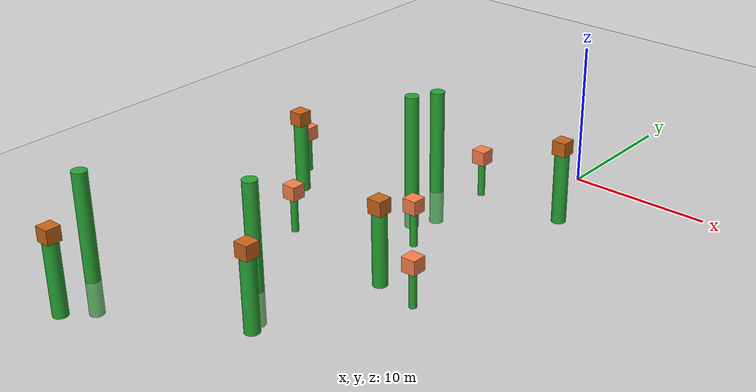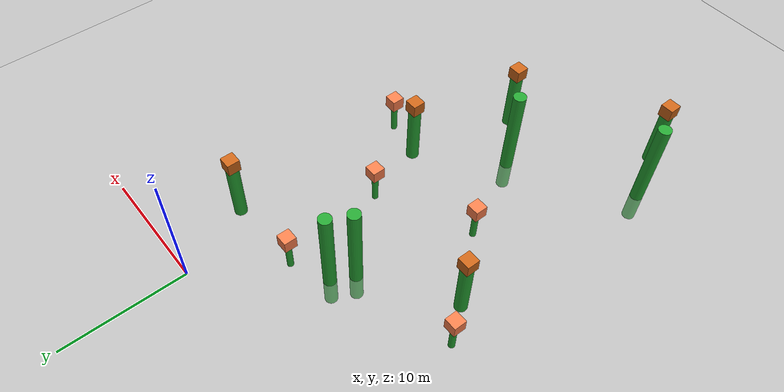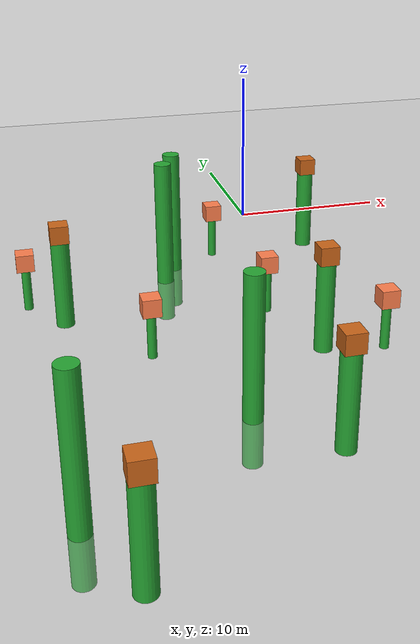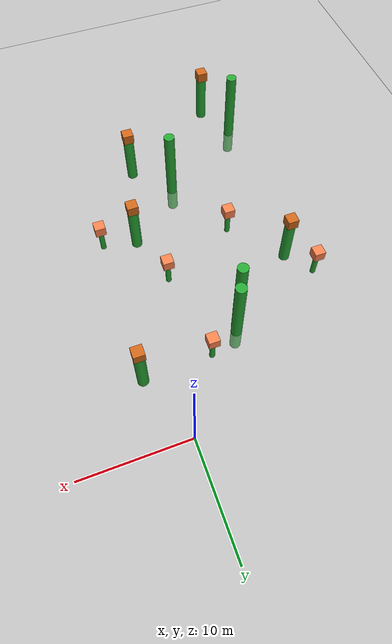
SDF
<sdf version="1.7">
 <world name="default">
  <model name="ground_plane">
   <static>1</static>
   <link name="link">
    <collision name="collision">
     <geometry><plane><normal>0 0 1</normal><size>100 100</size></plane></geometry>
     <surface>
      <contact><collide_bitmask>65535</collide_bitmask></contact>
      <friction><ode><mu>100</mu><mu2>50</mu2></ode></friction>
     </surface>
    </collision>
    <visual name="visual">
     <cast_shadows>0</cast_shadows>
     <geometry><plane><normal>0 0 1</normal><size>100 100</size></plane></geometry>
     <material>
      <script><uri>file://media/materials/scripts/gazebo.material</uri><name>Gazebo/Grey</name></script>
     </material>
    </visual>
   </link>
  </model>
  <model name="unit_cylinder_green_2_clone_clone_25">
   <link name="link">
    <inertial>
     <mass>1</mass>
     <inertia><ixx>0.145833</ixx><ixy>0</ixy><ixz>0</ixz><iyy>0.145833</iyy><iyz>0</iyz><izz>0.125</izz></inertia>
    </inertial>
    <visual name="visual">
     <geometry><cylinder><radius>0.5</radius><length>10</length></cylinder></geometry>
     <material>
      <script><name>Gazebo/Green</name><uri>file://media/materials/scripts/gazebo.material</uri></script>
      <shader type="pixel"><normal_map>__default__</normal_map></shader>
      <ambient>0 1 0.3 1</ambient>
      <diffuse>0.7 0.7 0.7 1</diffuse>
      <specular>0.01 0.01 0.01 1</specular>
      <emissive>0 0 0 1</emissive>
     </material>
    </visual>
    <collision name="collision">
     <geometry><cylinder><radius>0.5</radius><length>5</length></cylinder></geometry>
     <surface>
      <friction>
       <ode><mu>1</mu><mu2>1</mu2><fdir1>0 0 0</fdir1><slip1>0</slip1><slip2>0</slip2></ode>
       <torsional>
        <coefficient>1</coefficient>
        <patch_radius>0</patch_radius>
        <surface_radius>0</surface_radius>
        <use_patch_radius>1</use_patch_radius>
        <ode><slip>0</slip></ode>
       </torsional>
      </friction>
      <bounce><restitution_coefficient>0</restitution_coefficient><threshold>1e+06</threshold></bounce>
      <contact>
       <collide_without_contact>0</collide_without_contact>
       <collide_without_contact_bitmask>1</collide_without_contact_bitmask>
       <collide_bitmask>1</collide_bitmask>
       <ode>
        <soft_cfm>0</soft_cfm>
        <soft_erp>0.2</soft_erp>
        <kp>1e+13</kp>
        <kd>1</kd>
        <max_vel>0.01</max_vel>
        <min_depth>0</min_depth>
       </ode>
       <bullet>
        <split_impulse>1</split_impulse>
        <split_impulse_penetration_threshold>-0.01</split_impulse_penetration_threshold>
        <soft_cfm>0</soft_cfm>
        <soft_erp>0.2</soft_erp>
        <kp>1e+13</kp>
        <kd>1</kd>
       </bullet>
      </contact>
     </surface>
    </collision>
   </link>
   <static>1</static>
   <pose>-6.66472 -25.4538 2.5 0 0 -0.000967</pose>
  </model>
  <model name="unit_cylinder_green_2_clone_clone_27">
   <link name="link">
    <inertial>
     <mass>1</mass>
     <inertia><ixx>0.145833</ixx><ixy>0</ixy><ixz>0</ixz><iyy>0.145833</iyy><iyz>0</iyz><izz>0.125</izz></inertia>
    </inertial>
    <visual name="visual">
     <geometry><cylinder><radius>0.5</radius><length>10</length></cylinder></geometry>
     <material>
      <script><name>Gazebo/Green</name><uri>file://media/materials/scripts/gazebo.material</uri></script>
      <shader type="pixel"><normal_map>__default__</normal_map></shader>
      <ambient>0 1 0.3 1</ambient>
      <diffuse>0.7 0.7 0.7 1</diffuse>
      <specular>0.01 0.01 0.01 1</specular>
      <emissive>0 0 0 1</emissive>
     </material>
    </visual>
    <collision name="collision">
     <geometry><cylinder><radius>0.5</radius><length>5</length></cylinder></geometry>
     <surface>
      <friction>
       <ode><mu>1</mu><mu2>1</mu2><fdir1>0 0 0</fdir1><slip1>0</slip1><slip2>0</slip2></ode>
       <torsional>
        <coefficient>1</coefficient>
        <patch_radius>0</patch_radius>
        <surface_radius>0</surface_radius>
        <use_patch_radius>1</use_patch_radius>
        <ode><slip>0</slip></ode>
       </torsional>
      </friction>
      <bounce><restitution_coefficient>0</restitution_coefficient><threshold>1e+06</threshold></bounce>
      <contact>
       <collide_without_contact>0</collide_without_contact>
       <collide_without_contact_bitmask>1</collide_without_contact_bitmask>
       <collide_bitmask>1</collide_bitmask>
       <ode>
        <soft_cfm>0</soft_cfm>
        <soft_erp>0.2</soft_erp>
        <kp>1e+13</kp>
        <kd>1</kd>
        <max_vel>0.01</max_vel>
        <min_depth>0</min_depth>
       </ode>
       <bullet>
        <split_impulse>1</split_impulse>
        <split_impulse_penetration_threshold>-0.01</split_impulse_penetration_threshold>
        <soft_cfm>0</soft_cfm>
        <soft_erp>0.2</soft_erp>
        <kp>1e+13</kp>
        <kd>1</kd>
       </bullet>
      </contact>
     </surface>
    </collision>
   </link>
   <static>1</static>
   <pose>-15.2602 -31.188 2.5 0 0 -0.000967</pose>
  </model>
  <model name="unit_cylinder_green_2_clone_clone">
   <link name="link">
    <inertial>
     <mass>1</mass>
     <inertia><ixx>0.145833</ixx><ixy>0</ixy><ixz>0</ixz><iyy>0.145833</iyy><iyz>0</iyz><izz>0.125</izz></inertia>
    </inertial>
    <visual name="visual">
     <geometry><cylinder><radius>0.5</radius><length>10</length></cylinder></geometry>
     <material>
      <script><name>Gazebo/Green</name><uri>file://media/materials/scripts/gazebo.material</uri></script>
      <shader type="pixel"><normal_map>__default__</normal_map></shader>
      <ambient>0 1 0.3 1</ambient>
      <diffuse>0.7 0.7 0.7 1</diffuse>
      <specular>0.01 0.01 0.01 1</specular>
      <emissive>0 0 0 1</emissive>
     </material>
    </visual>
    <collision name="collision">
     <geometry><cylinder><radius>0.5</radius><length>5</length></cylinder></geometry>
     <surface>
      <friction>
       <ode><mu>1</mu><mu2>1</mu2><fdir1>0 0 0</fdir1><slip1>0</slip1><slip2>0</slip2></ode>
       <torsional>
        <coefficient>1</coefficient>
        <patch_radius>0</patch_radius>
        <surface_radius>0</surface_radius>
        <use_patch_radius>1</use_patch_radius>
        <ode><slip>0</slip></ode>
       </torsional>
      </friction>
      <bounce><restitution_coefficient>0</restitution_coefficient><threshold>1e+06</threshold></bounce>
      <contact>
       <collide_without_contact>0</collide_without_contact>
       <collide_without_contact_bitmask>1</collide_without_contact_bitmask>
       <collide_bitmask>1</collide_bitmask>
       <ode>
        <soft_cfm>0</soft_cfm>
        <soft_erp>0.2</soft_erp>
        <kp>1e+13</kp>
        <kd>1</kd>
        <max_vel>0.01</max_vel>
        <min_depth>0</min_depth>
       </ode>
       <bullet>
        <split_impulse>1</split_impulse>
        <split_impulse_penetration_threshold>-0.01</split_impulse_penetration_threshold>
        <soft_cfm>0</soft_cfm>
        <soft_erp>0.2</soft_erp>
        <kp>1e+13</kp>
        <kd>1</kd>
       </bullet>
      </contact>
     </surface>
    </collision>
   </link>
   <static>1</static>
   <pose>-7.63791 -9.5753 2.49999 0 0 -0.000946</pose>
  </model>
  <model name="unit_cylinder_green_2_clone_clone_clone">
   <link name="link">
    <inertial>
     <mass>1</mass>
     <inertia><ixx>0.145833</ixx><ixy>0</ixy><ixz>0</ixz><iyy>0.145833</iyy><iyz>0</iyz><izz>0.125</izz></inertia>
    </inertial>
    <visual name="visual">
     <geometry><cylinder><radius>0.5</radius><length>10</length></cylinder></geometry>
     <material>
      <script><name>Gazebo/Green</name><uri>file://media/materials/scripts/gazebo.material</uri></script>
      <shader type="pixel"><normal_map>__default__</normal_map></shader>
      <ambient>0 1 0.3 1</ambient>
      <diffuse>0.7 0.7 0.7 1</diffuse>
      <specular>0.01 0.01 0.01 1</specular>
      <emissive>0 0 0 1</emissive>
     </material>
    </visual>
    <collision name="collision">
     <geometry><cylinder><radius>0.5</radius><length>5</length></cylinder></geometry>
     <surface>
      <friction>
       <ode><mu>1</mu><mu2>1</mu2><fdir1>0 0 0</fdir1><slip1>0</slip1><slip2>0</slip2></ode>
       <torsional>
        <coefficient>1</coefficient>
        <patch_radius>0</patch_radius>
        <surface_radius>0</surface_radius>
        <use_patch_radius>1</use_patch_radius>
        <ode><slip>0</slip></ode>
       </torsional>
      </friction>
      <bounce><restitution_coefficient>0</restitution_coefficient><threshold>1e+06</threshold></bounce>
      <contact>
       <collide_without_contact>0</collide_without_contact>
       <collide_without_contact_bitmask>1</collide_without_contact_bitmask>
       <collide_bitmask>1</collide_bitmask>
       <ode>
        <soft_cfm>0</soft_cfm>
        <soft_erp>0.2</soft_erp>
        <kp>1e+13</kp>
        <kd>1</kd>
        <max_vel>0.01</max_vel>
        <min_depth>0</min_depth>
       </ode>
       <bullet>
        <split_impulse>1</split_impulse>
        <split_impulse_penetration_threshold>-0.01</split_impulse_penetration_threshold>
        <soft_cfm>0</soft_cfm>
        <soft_erp>0.2</soft_erp>
        <kp>1e+13</kp>
        <kd>1</kd>
       </bullet>
      </contact>
     </surface>
    </collision>
   </link>
   <static>1</static>
   <pose>-6.78608 -7.85921 2.49999 0 0 -0.000934</pose>
  </model>
  <model name="unit_cylinder_green_2_clone_clone_3_clone_0">
   <link name="link">
    <inertial>
     <mass>1</mass>
     <inertia><ixx>0.145833</ixx><ixy>0</ixy><ixz>0</ixz><iyy>0.145833</iyy><iyz>0</iyz><izz>0.125</izz></inertia>
    </inertial>
    <visual name="visual">
     <geometry><cylinder><radius>0.5</radius><length>5</length></cylinder></geometry>
     <material>
      <script><name>Gazebo/Green</name><uri>file://media/materials/scripts/gazebo.material</uri></script>
      <shader type="pixel"><normal_map>__default__</normal_map></shader>
      <ambient>0 1 0.3 1</ambient>
      <diffuse>0.7 0.7 0.7 1</diffuse>
      <specular>0.01 0.01 0.01 1</specular>
      <emissive>0 0 0 1</emissive>
     </material>
    </visual>
    <collision name="collision">
     <geometry><cylinder><radius>0.5</radius><length>5</length></cylinder></geometry>
     <surface>
      <friction>
       <ode><mu>1</mu><mu2>1</mu2><fdir1>0 0 0</fdir1><slip1>0</slip1><slip2>0</slip2></ode>
       <torsional>
        <coefficient>1</coefficient>
        <patch_radius>0</patch_radius>
        <surface_radius>0</surface_radius>
        <use_patch_radius>1</use_patch_radius>
        <ode><slip>0</slip></ode>
       </torsional>
      </friction>
      <bounce><restitution_coefficient>0</restitution_coefficient><threshold>1e+06</threshold></bounce>
      <contact>
       <collide_without_contact>0</collide_without_contact>
       <collide_without_contact_bitmask>1</collide_without_contact_bitmask>
       <collide_bitmask>1</collide_bitmask>
       <ode>
        <soft_cfm>0</soft_cfm>
        <soft_erp>0.2</soft_erp>
        <kp>1e+13</kp>
        <kd>1</kd>
        <max_vel>0.01</max_vel>
        <min_depth>0</min_depth>
       </ode>
       <bullet>
        <split_impulse>1</split_impulse>
        <split_impulse_penetration_threshold>-0.01</split_impulse_penetration_threshold>
        <soft_cfm>0</soft_cfm>
        <soft_erp>0.2</soft_erp>
        <kp>1e+13</kp>
        <kd>1</kd>
       </bullet>
      </contact>
     </surface>
    </collision>
   </link>
   <link name="link_3">
    <inertial>
     <mass>1</mass>
     <inertia>
      <ixx>0.166667</ixx>
      <ixy>0</ixy>
      <ixz>0</ixz>
      <iyy>0.166667</iyy>
      <iyz>0</iyz>
      <izz>0.166667</izz>
     </inertia>
    </inertial>
    <pose>0 0 3 0 -0 0.000935</pose>
    <visual name="visual">
     <geometry><box><size>1 1 1</size></box></geometry>
     <material>
      <lighting>1</lighting>
      <script><uri>file://media/materials/scripts/gazebo.material</uri><name>Gazebo/Grey</name></script>
      <shader type="pixel"><normal_map>__default__</normal_map></shader>
      <ambient>0.8 0.4 0.1 1</ambient>
      <diffuse>0.7 0.7 0.7 1</diffuse>
      <specular>0.01 0.01 0.01 1</specular>
      <emissive>0 0 0 1</emissive>
     </material>
    </visual>
    <collision name="collision">
     <geometry><box><size>1 1 1</size></box></geometry>
     <surface>
      <friction>
       <ode><mu>1</mu><mu2>1</mu2><fdir1>0 0 0</fdir1><slip1>0</slip1><slip2>0</slip2></ode>
       <torsional>
        <coefficient>1</coefficient>
        <patch_radius>0</patch_radius>
        <surface_radius>0</surface_radius>
        <use_patch_radius>1</use_patch_radius>
        <ode><slip>0</slip></ode>
       </torsional>
      </friction>
      <bounce><restitution_coefficient>0</restitution_coefficient><threshold>1e+06</threshold></bounce>
      <contact>
       <collide_without_contact>0</collide_without_contact>
       <collide_without_contact_bitmask>1</collide_without_contact_bitmask>
       <collide_bitmask>1</collide_bitmask>
       <ode>
        <soft_cfm>0</soft_cfm>
        <soft_erp>0.2</soft_erp>
        <kp>1e+13</kp>
        <kd>1</kd>
        <max_vel>0.01</max_vel>
        <min_depth>0</min_depth>
       </ode>
       <bullet>
        <split_impulse>1</split_impulse>
        <split_impulse_penetration_threshold>-0.01</split_impulse_penetration_threshold>
        <soft_cfm>0</soft_cfm>
        <soft_erp>0.2</soft_erp>
        <kp>1e+13</kp>
        <kd>1</kd>
       </bullet>
      </contact>
     </surface>
    </collision>
   </link>
   <static>1</static>
   <pose>2.45235 -6.17976 2.49999 0 0 -0.000935</pose>
  </model>
  <model name="unit_cylinder_green_2_clone_clone_3_clone_0_clone_0_clone_6">
   <link name="link">
    <inertial>
     <mass>1</mass>
     <inertia><ixx>0.145833</ixx><ixy>0</ixy><ixz>0</ixz><iyy>0.145833</iyy><iyz>0</iyz><izz>0.125</izz></inertia>
    </inertial>
    <visual name="visual">
     <geometry><cylinder><radius>0.5</radius><length>5</length></cylinder></geometry>
     <material>
      <script><name>Gazebo/Green</name><uri>file://media/materials/scripts/gazebo.material</uri></script>
      <shader type="pixel"><normal_map>__default__</normal_map></shader>
      <ambient>0 1 0.3 1</ambient>
      <diffuse>0.7 0.7 0.7 1</diffuse>
      <specular>0.01 0.01 0.01 1</specular>
      <emissive>0 0 0 1</emissive>
     </material>
    </visual>
    <collision name="collision">
     <geometry><cylinder><radius>0.5</radius><length>5</length></cylinder></geometry>
     <surface>
      <friction>
       <ode><mu>1</mu><mu2>1</mu2><fdir1>0 0 0</fdir1><slip1>0</slip1><slip2>0</slip2></ode>
       <torsional>
        <coefficient>1</coefficient>
        <patch_radius>0</patch_radius>
        <surface_radius>0</surface_radius>
        <use_patch_radius>1</use_patch_radius>
        <ode><slip>0</slip></ode>
       </torsional>
      </friction>
      <bounce><restitution_coefficient>0</restitution_coefficient><threshold>1e+06</threshold></bounce>
      <contact>
       <collide_without_contact>0</collide_without_contact>
       <collide_without_contact_bitmask>1</collide_without_contact_bitmask>
       <collide_bitmask>1</collide_bitmask>
       <ode>
        <soft_cfm>0</soft_cfm>
        <soft_erp>0.2</soft_erp>
        <kp>1e+13</kp>
        <kd>1</kd>
        <max_vel>0.01</max_vel>
        <min_depth>0</min_depth>
       </ode>
       <bullet>
        <split_impulse>1</split_impulse>
        <split_impulse_penetration_threshold>-0.01</split_impulse_penetration_threshold>
        <soft_cfm>0</soft_cfm>
        <soft_erp>0.2</soft_erp>
        <kp>1e+13</kp>
        <kd>1</kd>
       </bullet>
      </contact>
     </surface>
    </collision>
   </link>
   <link name="link_3">
    <inertial>
     <mass>1</mass>
     <inertia>
      <ixx>0.166667</ixx>
      <ixy>0</ixy>
      <ixz>0</ixz>
      <iyy>0.166667</iyy>
      <iyz>0</iyz>
      <izz>0.166667</izz>
     </inertia>
    </inertial>
    <pose>0 0 3 0 -0 0.000935</pose>
    <visual name="visual">
     <geometry><box><size>1 1 1</size></box></geometry>
     <material>
      <lighting>1</lighting>
      <script><uri>file://media/materials/scripts/gazebo.material</uri><name>Gazebo/Grey</name></script>
      <shader type="pixel"><normal_map>__default__</normal_map></shader>
      <ambient>0.8 0.4 0.1 1</ambient>
      <diffuse>0.7 0.7 0.7 1</diffuse>
      <specular>0.01 0.01 0.01 1</specular>
      <emissive>0 0 0 1</emissive>
     </material>
    </visual>
    <collision name="collision">
     <geometry><box><size>1 1 1</size></box></geometry>
     <surface>
      <friction>
       <ode><mu>1</mu><mu2>1</mu2><fdir1>0 0 0</fdir1><slip1>0</slip1><slip2>0</slip2></ode>
       <torsional>
        <coefficient>1</coefficient>
        <patch_radius>0</patch_radius>
        <surface_radius>0</surface_radius>
        <use_patch_radius>1</use_patch_radius>
        <ode><slip>0</slip></ode>
       </torsional>
      </friction>
      <bounce><restitution_coefficient>0</restitution_coefficient><threshold>1e+06</threshold></bounce>
      <contact>
       <collide_without_contact>0</collide_without_contact>
       <collide_without_contact_bitmask>1</collide_without_contact_bitmask>
       <collide_bitmask>1</collide_bitmask>
       <ode>
        <soft_cfm>0</soft_cfm>
        <soft_erp>0.2</soft_erp>
        <kp>1e+13</kp>
        <kd>1</kd>
        <max_vel>0.01</max_vel>
        <min_depth>0</min_depth>
       </ode>
       <bullet>
        <split_impulse>1</split_impulse>
        <split_impulse_penetration_threshold>-0.01</split_impulse_penetration_threshold>
        <soft_cfm>0</soft_cfm>
        <soft_erp>0.2</soft_erp>
        <kp>1e+13</kp>
        <kd>1</kd>
       </bullet>
      </contact>
     </surface>
    </collision>
   </link>
   <static>1</static>
   <pose>-3.41167 -28.8364 2.49999 0 0 -0.000935</pose>
  </model>
  <model name="unit_cylinder_green_2_clone_clone_3_clone_0_clone_0_clone_12">
   <link name="link">
    <inertial>
     <mass>1</mass>
     <inertia><ixx>0.145833</ixx><ixy>0</ixy><ixz>0</ixz><iyy>0.145833</iyy><iyz>0</iyz><izz>0.125</izz></inertia>
    </inertial>
    <visual name="visual">
     <geometry><cylinder><radius>0.5</radius><length>5</length></cylinder></geometry>
     <material>
      <script><name>Gazebo/Green</name><uri>file://media/materials/scripts/gazebo.material</uri></script>
      <shader type="pixel"><normal_map>__default__</normal_map></shader>
      <ambient>0 1 0.3 1</ambient>
      <diffuse>0.7 0.7 0.7 1</diffuse>
      <specular>0.01 0.01 0.01 1</specular>
      <emissive>0 0 0 1</emissive>
     </material>
    </visual>
    <collision name="collision">
     <geometry><cylinder><radius>0.5</radius><length>5</length></cylinder></geometry>
     <surface>
      <friction>
       <ode><mu>1</mu><mu2>1</mu2><fdir1>0 0 0</fdir1><slip1>0</slip1><slip2>0</slip2></ode>
       <torsional>
        <coefficient>1</coefficient>
        <patch_radius>0</patch_radius>
        <surface_radius>0</surface_radius>
        <use_patch_radius>1</use_patch_radius>
        <ode><slip>0</slip></ode>
       </torsional>
      </friction>
      <bounce><restitution_coefficient>0</restitution_coefficient><threshold>1e+06</threshold></bounce>
      <contact>
       <collide_without_contact>0</collide_without_contact>
       <collide_without_contact_bitmask>1</collide_without_contact_bitmask>
       <collide_bitmask>1</collide_bitmask>
       <ode>
        <soft_cfm>0</soft_cfm>
        <soft_erp>0.2</soft_erp>
        <kp>1e+13</kp>
        <kd>1</kd>
        <max_vel>0.01</max_vel>
        <min_depth>0</min_depth>
       </ode>
       <bullet>
        <split_impulse>1</split_impulse>
        <split_impulse_penetration_threshold>-0.01</split_impulse_penetration_threshold>
        <soft_cfm>0</soft_cfm>
        <soft_erp>0.2</soft_erp>
        <kp>1e+13</kp>
        <kd>1</kd>
       </bullet>
      </contact>
     </surface>
    </collision>
   </link>
   <link name="link_3">
    <inertial>
     <mass>1</mass>
     <inertia>
      <ixx>0.166667</ixx>
      <ixy>0</ixy>
      <ixz>0</ixz>
      <iyy>0.166667</iyy>
      <iyz>0</iyz>
      <izz>0.166667</izz>
     </inertia>
    </inertial>
    <pose>0 0 3 0 -0 0.000935</pose>
    <visual name="visual">
     <geometry><box><size>1 1 1</size></box></geometry>
     <material>
      <lighting>1</lighting>
      <script><uri>file://media/materials/scripts/gazebo.material</uri><name>Gazebo/Grey</name></script>
      <shader type="pixel"><normal_map>__default__</normal_map></shader>
      <ambient>0.8 0.4 0.1 1</ambient>
      <diffuse>0.7 0.7 0.7 1</diffuse>
      <specular>0.01 0.01 0.01 1</specular>
      <emissive>0 0 0 1</emissive>
     </material>
    </visual>
    <collision name="collision">
     <geometry><box><size>1 1 1</size></box></geometry>
     <surface>
      <friction>
       <ode><mu>1</mu><mu2>1</mu2><fdir1>0 0 0</fdir1><slip1>0</slip1><slip2>0</slip2></ode>
       <torsional>
        <coefficient>1</coefficient>
        <patch_radius>0</patch_radius>
        <surface_radius>0</surface_radius>
        <use_patch_radius>1</use_patch_radius>
        <ode><slip>0</slip></ode>
       </torsional>
      </friction>
      <bounce><restitution_coefficient>0</restitution_coefficient><threshold>1e+06</threshold></bounce>
      <contact>
       <collide_without_contact>0</collide_without_contact>
       <collide_without_contact_bitmask>1</collide_without_contact_bitmask>
       <collide_bitmask>1</collide_bitmask>
       <ode>
        <soft_cfm>0</soft_cfm>
        <soft_erp>0.2</soft_erp>
        <kp>1e+13</kp>
        <kd>1</kd>
        <max_vel>0.01</max_vel>
        <min_depth>0</min_depth>
       </ode>
       <bullet>
        <split_impulse>1</split_impulse>
        <split_impulse_penetration_threshold>-0.01</split_impulse_penetration_threshold>
        <soft_cfm>0</soft_cfm>
        <soft_erp>0.2</soft_erp>
        <kp>1e+13</kp>
        <kd>1</kd>
       </bullet>
      </contact>
     </surface>
    </collision>
   </link>
   <static>1</static>
   <pose>-1.25623 -20.1511 2.49999 0 0 -0.000935</pose>
  </model>
  <model name="unit_cylinder_green_2_clone_clone_3_clone_0_clone_0_clone_21">
   <link name="link">
    <inertial>
     <mass>1</mass>
     <inertia><ixx>0.145833</ixx><ixy>0</ixy><ixz>0</ixz><iyy>0.145833</iyy><iyz>0</iyz><izz>0.125</izz></inertia>
    </inertial>
    <visual name="visual">
     <geometry><cylinder><radius>0.5</radius><length>5</length></cylinder></geometry>
     <material>
      <script><name>Gazebo/Green</name><uri>file://media/materials/scripts/gazebo.material</uri></script>
      <shader type="pixel"><normal_map>__default__</normal_map></shader>
      <ambient>0 1 0.3 1</ambient>
      <diffuse>0.7 0.7 0.7 1</diffuse>
      <specular>0.01 0.01 0.01 1</specular>
      <emissive>0 0 0 1</emissive>
     </material>
    </visual>
    <collision name="collision">
     <geometry><cylinder><radius>0.5</radius><length>5</length></cylinder></geometry>
     <surface>
      <friction>
       <ode><mu>1</mu><mu2>1</mu2><fdir1>0 0 0</fdir1><slip1>0</slip1><slip2>0</slip2></ode>
       <torsional>
        <coefficient>1</coefficient>
        <patch_radius>0</patch_radius>
        <surface_radius>0</surface_radius>
        <use_patch_radius>1</use_patch_radius>
        <ode><slip>0</slip></ode>
       </torsional>
      </friction>
      <bounce><restitution_coefficient>0</restitution_coefficient><threshold>1e+06</threshold></bounce>
      <contact>
       <collide_without_contact>0</collide_without_contact>
       <collide_without_contact_bitmask>1</collide_without_contact_bitmask>
       <collide_bitmask>1</collide_bitmask>
       <ode>
        <soft_cfm>0</soft_cfm>
        <soft_erp>0.2</soft_erp>
        <kp>1e+13</kp>
        <kd>1</kd>
        <max_vel>0.01</max_vel>
        <min_depth>0</min_depth>
       </ode>
       <bullet>
        <split_impulse>1</split_impulse>
        <split_impulse_penetration_threshold>-0.01</split_impulse_penetration_threshold>
        <soft_cfm>0</soft_cfm>
        <soft_erp>0.2</soft_erp>
        <kp>1e+13</kp>
        <kd>1</kd>
       </bullet>
      </contact>
     </surface>
    </collision>
   </link>
   <link name="link_3">
    <inertial>
     <mass>1</mass>
     <inertia>
      <ixx>0.166667</ixx>
      <ixy>0</ixy>
      <ixz>0</ixz>
      <iyy>0.166667</iyy>
      <iyz>0</iyz>
      <izz>0.166667</izz>
     </inertia>
    </inertial>
    <pose>0 0 3 0 -0 0.000935</pose>
    <visual name="visual">
     <geometry><box><size>1 1 1</size></box></geometry>
     <material>
      <lighting>1</lighting>
      <script><uri>file://media/materials/scripts/gazebo.material</uri><name>Gazebo/Grey</name></script>
      <shader type="pixel"><normal_map>__default__</normal_map></shader>
      <ambient>0.8 0.4 0.1 1</ambient>
      <diffuse>0.7 0.7 0.7 1</diffuse>
      <specular>0.01 0.01 0.01 1</specular>
      <emissive>0 0 0 1</emissive>
     </material>
    </visual>
    <collision name="collision">
     <geometry><box><size>1 1 1</size></box></geometry>
     <surface>
      <friction>
       <ode><mu>1</mu><mu2>1</mu2><fdir1>0 0 0</fdir1><slip1>0</slip1><slip2>0</slip2></ode>
       <torsional>
        <coefficient>1</coefficient>
        <patch_radius>0</patch_radius>
        <surface_radius>0</surface_radius>
        <use_patch_radius>1</use_patch_radius>
        <ode><slip>0</slip></ode>
       </torsional>
      </friction>
      <bounce><restitution_coefficient>0</restitution_coefficient><threshold>1e+06</threshold></bounce>
      <contact>
       <collide_without_contact>0</collide_without_contact>
       <collide_without_contact_bitmask>1</collide_without_contact_bitmask>
       <collide_bitmask>1</collide_bitmask>
       <ode>
        <soft_cfm>0</soft_cfm>
        <soft_erp>0.2</soft_erp>
        <kp>1e+13</kp>
        <kd>1</kd>
        <max_vel>0.01</max_vel>
        <min_depth>0</min_depth>
       </ode>
       <bullet>
        <split_impulse>1</split_impulse>
        <split_impulse_penetration_threshold>-0.01</split_impulse_penetration_threshold>
        <soft_cfm>0</soft_cfm>
        <soft_erp>0.2</soft_erp>
        <kp>1e+13</kp>
        <kd>1</kd>
       </bullet>
      </contact>
     </surface>
    </collision>
   </link>
   <static>1</static>
   <pose>-14.145 -13.8287 2.49999 0 0 -0.000935</pose>
  </model>
  <model name="unit_cylinder_green_2_clone_clone_3_clone_0_clone_0_clone_28">
   <link name="link">
    <inertial>
     <mass>1</mass>
     <inertia><ixx>0.145833</ixx><ixy>0</ixy><ixz>0</ixz><iyy>0.145833</iyy><iyz>0</iyz><izz>0.125</izz></inertia>
    </inertial>
    <visual name="visual">
     <geometry><cylinder><radius>0.5</radius><length>5</length></cylinder></geometry>
     <material>
      <script><name>Gazebo/Green</name><uri>file://media/materials/scripts/gazebo.material</uri></script>
      <shader type="pixel"><normal_map>__default__</normal_map></shader>
      <ambient>0 1 0.3 1</ambient>
      <diffuse>0.7 0.7 0.7 1</diffuse>
      <specular>0.01 0.01 0.01 1</specular>
      <emissive>0 0 0 1</emissive>
     </material>
    </visual>
    <collision name="collision">
     <geometry><cylinder><radius>0.5</radius><length>5</length></cylinder></geometry>
     <surface>
      <friction>
       <ode><mu>1</mu><mu2>1</mu2><fdir1>0 0 0</fdir1><slip1>0</slip1><slip2>0</slip2></ode>
       <torsional>
        <coefficient>1</coefficient>
        <patch_radius>0</patch_radius>
        <surface_radius>0</surface_radius>
        <use_patch_radius>1</use_patch_radius>
        <ode><slip>0</slip></ode>
       </torsional>
      </friction>
      <bounce><restitution_coefficient>0</restitution_coefficient><threshold>1e+06</threshold></bounce>
      <contact>
       <collide_without_contact>0</collide_without_contact>
       <collide_without_contact_bitmask>1</collide_without_contact_bitmask>
       <collide_bitmask>1</collide_bitmask>
       <ode>
        <soft_cfm>0</soft_cfm>
        <soft_erp>0.2</soft_erp>
        <kp>1e+13</kp>
        <kd>1</kd>
        <max_vel>0.01</max_vel>
        <min_depth>0</min_depth>
       </ode>
       <bullet>
        <split_impulse>1</split_impulse>
        <split_impulse_penetration_threshold>-0.01</split_impulse_penetration_threshold>
        <soft_cfm>0</soft_cfm>
        <soft_erp>0.2</soft_erp>
        <kp>1e+13</kp>
        <kd>1</kd>
       </bullet>
      </contact>
     </surface>
    </collision>
   </link>
   <link name="link_3">
    <inertial>
     <mass>1</mass>
     <inertia>
      <ixx>0.166667</ixx>
      <ixy>0</ixy>
      <ixz>0</ixz>
      <iyy>0.166667</iyy>
      <iyz>0</iyz>
      <izz>0.166667</izz>
     </inertia>
    </inertial>
    <pose>0 0 3 0 -0 0.000935</pose>
    <visual name="visual">
     <geometry><box><size>1 1 1</size></box></geometry>
     <material>
      <lighting>1</lighting>
      <script><uri>file://media/materials/scripts/gazebo.material</uri><name>Gazebo/Grey</name></script>
      <shader type="pixel"><normal_map>__default__</normal_map></shader>
      <ambient>0.8 0.4 0.1 1</ambient>
      <diffuse>0.7 0.7 0.7 1</diffuse>
      <specular>0.01 0.01 0.01 1</specular>
      <emissive>0 0 0 1</emissive>
     </material>
    </visual>
    <collision name="collision">
     <geometry><box><size>1 1 1</size></box></geometry>
     <surface>
      <friction>
       <ode><mu>1</mu><mu2>1</mu2><fdir1>0 0 0</fdir1><slip1>0</slip1><slip2>0</slip2></ode>
       <torsional>
        <coefficient>1</coefficient>
        <patch_radius>0</patch_radius>
        <surface_radius>0</surface_radius>
        <use_patch_radius>1</use_patch_radius>
        <ode><slip>0</slip></ode>
       </torsional>
      </friction>
      <bounce><restitution_coefficient>0</restitution_coefficient><threshold>1e+06</threshold></bounce>
      <contact>
       <collide_without_contact>0</collide_without_contact>
       <collide_without_contact_bitmask>1</collide_without_contact_bitmask>
       <collide_bitmask>1</collide_bitmask>
       <ode>
        <soft_cfm>0</soft_cfm>
        <soft_erp>0.2</soft_erp>
        <kp>1e+13</kp>
        <kd>1</kd>
        <max_vel>0.01</max_vel>
        <min_depth>0</min_depth>
       </ode>
       <bullet>
        <split_impulse>1</split_impulse>
        <split_impulse_penetration_threshold>-0.01</split_impulse_penetration_threshold>
        <soft_cfm>0</soft_cfm>
        <soft_erp>0.2</soft_erp>
        <kp>1e+13</kp>
        <kd>1</kd>
       </bullet>
      </contact>
     </surface>
    </collision>
   </link>
   <static>1</static>
   <pose>-13.3463 -34.9149 2.49999 0 0 -0.000935</pose>
  </model>
  <model name="unit_cylinder_green_2_clone_clone_3_clone_0_clone_0_clone_52">
   <link name="link">
    <inertial>
     <mass>1</mass>
     <inertia><ixx>0.145833</ixx><ixy>0</ixy><ixz>0</ixz><iyy>0.145833</iyy><iyz>0</iyz><izz>0.125</izz></inertia>
    </inertial>
    <pose>0 0 -1.25 0 -0 0</pose>
    <visual name="visual">
     <geometry><cylinder><radius>0.25</radius><length>2.5</length></cylinder></geometry>
     <material>
      <script><name>Gazebo/Green</name><uri>file://media/materials/scripts/gazebo.material</uri></script>
      <shader type="pixel"><normal_map>__default__</normal_map></shader>
      <ambient>0 1 0.3 1</ambient>
      <diffuse>0.7 0.7 0.7 1</diffuse>
      <specular>0.01 0.01 0.01 1</specular>
      <emissive>0 0 0 1</emissive>
     </material>
    </visual>
    <collision name="collision">
     <geometry><cylinder><radius>0.5</radius><length>5</length></cylinder></geometry>
     <surface>
      <friction>
       <ode><mu>1</mu><mu2>1</mu2><fdir1>0 0 0</fdir1><slip1>0</slip1><slip2>0</slip2></ode>
       <torsional>
        <coefficient>1</coefficient>
        <patch_radius>0</patch_radius>
        <surface_radius>0</surface_radius>
        <use_patch_radius>1</use_patch_radius>
        <ode><slip>0</slip></ode>
       </torsional>
      </friction>
      <bounce><restitution_coefficient>0</restitution_coefficient><threshold>1e+06</threshold></bounce>
      <contact>
       <collide_without_contact>0</collide_without_contact>
       <collide_without_contact_bitmask>1</collide_without_contact_bitmask>
       <collide_bitmask>1</collide_bitmask>
       <ode>
        <soft_cfm>0</soft_cfm>
        <soft_erp>0.2</soft_erp>
        <kp>1e+13</kp>
        <kd>1</kd>
        <max_vel>0.01</max_vel>
        <min_depth>0</min_depth>
       </ode>
       <bullet>
        <split_impulse>1</split_impulse>
        <split_impulse_penetration_threshold>-0.01</split_impulse_penetration_threshold>
        <soft_cfm>0</soft_cfm>
        <soft_erp>0.2</soft_erp>
        <kp>1e+13</kp>
        <kd>1</kd>
       </bullet>
      </contact>
     </surface>
    </collision>
   </link>
   <link name="link_3">
    <inertial>
     <mass>1</mass>
     <inertia>
      <ixx>0.166667</ixx>
      <ixy>0</ixy>
      <ixz>0</ixz>
      <iyy>0.166667</iyy>
      <iyz>0</iyz>
      <izz>0.166667</izz>
     </inertia>
    </inertial>
    <pose>0 0 0.5 0 -0 0.000935</pose>
    <visual name="visual">
     <geometry><box><size>1 1 1</size></box></geometry>
     <material>
      <lighting>1</lighting>
      <script><uri>file://media/materials/scripts/gazebo.material</uri><name>Gazebo/Grey</name></script>
      <shader type="pixel"><normal_map>__default__</normal_map></shader>
      <ambient>1 0.5 0.3 1</ambient>
      <diffuse>0.7 0.7 0.7 1</diffuse>
      <specular>0.01 0.01 0.01 1</specular>
      <emissive>0 0 0 1</emissive>
     </material>
    </visual>
    <collision name="collision">
     <geometry><box><size>1 1 1</size></box></geometry>
     <surface>
      <friction>
       <ode><mu>1</mu><mu2>1</mu2><fdir1>0 0 0</fdir1><slip1>0</slip1><slip2>0</slip2></ode>
       <torsional>
        <coefficient>1</coefficient>
        <patch_radius>0</patch_radius>
        <surface_radius>0</surface_radius>
        <use_patch_radius>1</use_patch_radius>
        <ode><slip>0</slip></ode>
       </torsional>
      </friction>
      <bounce><restitution_coefficient>0</restitution_coefficient><threshold>1e+06</threshold></bounce>
      <contact>
       <collide_without_contact>0</collide_without_contact>
       <collide_without_contact_bitmask>1</collide_without_contact_bitmask>
       <collide_bitmask>1</collide_bitmask>
       <ode>
        <soft_cfm>0</soft_cfm>
        <soft_erp>0.2</soft_erp>
        <kp>1e+13</kp>
        <kd>1</kd>
        <max_vel>0.01</max_vel>
        <min_depth>0</min_depth>
       </ode>
       <bullet>
        <split_impulse>1</split_impulse>
        <split_impulse_penetration_threshold>-0.01</split_impulse_penetration_threshold>
        <soft_cfm>0</soft_cfm>
        <soft_erp>0.2</soft_erp>
        <kp>1e+13</kp>
        <kd>1</kd>
       </bullet>
      </contact>
     </surface>
    </collision>
   </link>
   <static>1</static>
   <pose>-16.0056 -11.3245 2.49999 0 0 -0.000935</pose>
  </model>
  <model name="unit_cylinder_green_2_clone_clone_3_clone_0_clone_0_clone_55">
   <link name="link">
    <inertial>
     <mass>1</mass>
     <inertia><ixx>0.145833</ixx><ixy>0</ixy><ixz>0</ixz><iyy>0.145833</iyy><iyz>0</iyz><izz>0.125</izz></inertia>
    </inertial>
    <pose>0 0 -1.25 0 -0 0</pose>
    <visual name="visual">
     <geometry><cylinder><radius>0.25</radius><length>2.5</length></cylinder></geometry>
     <material>
      <script><name>Gazebo/Green</name><uri>file://media/materials/scripts/gazebo.material</uri></script>
      <shader type="pixel"><normal_map>__default__</normal_map></shader>
      <ambient>0 1 0.3 1</ambient>
      <diffuse>0.7 0.7 0.7 1</diffuse>
      <specular>0.01 0.01 0.01 1</specular>
      <emissive>0 0 0 1</emissive>
     </material>
    </visual>
    <collision name="collision">
     <geometry><cylinder><radius>0.5</radius><length>5</length></cylinder></geometry>
     <surface>
      <friction>
       <ode><mu>1</mu><mu2>1</mu2><fdir1>0 0 0</fdir1><slip1>0</slip1><slip2>0</slip2></ode>
       <torsional>
        <coefficient>1</coefficient>
        <patch_radius>0</patch_radius>
        <surface_radius>0</surface_radius>
        <use_patch_radius>1</use_patch_radius>
        <ode><slip>0</slip></ode>
       </torsional>
      </friction>
      <bounce><restitution_coefficient>0</restitution_coefficient><threshold>1e+06</threshold></bounce>
      <contact>
       <collide_without_contact>0</collide_without_contact>
       <collide_without_contact_bitmask>1</collide_without_contact_bitmask>
       <collide_bitmask>1</collide_bitmask>
       <ode>
        <soft_cfm>0</soft_cfm>
        <soft_erp>0.2</soft_erp>
        <kp>1e+13</kp>
        <kd>1</kd>
        <max_vel>0.01</max_vel>
        <min_depth>0</min_depth>
       </ode>
       <bullet>
        <split_impulse>1</split_impulse>
        <split_impulse_penetration_threshold>-0.01</split_impulse_penetration_threshold>
        <soft_cfm>0</soft_cfm>
        <soft_erp>0.2</soft_erp>
        <kp>1e+13</kp>
        <kd>1</kd>
       </bullet>
      </contact>
     </surface>
    </collision>
   </link>
   <link name="link_3">
    <inertial>
     <mass>1</mass>
     <inertia>
      <ixx>0.166667</ixx>
      <ixy>0</ixy>
      <ixz>0</ixz>
      <iyy>0.166667</iyy>
      <iyz>0</iyz>
      <izz>0.166667</izz>
     </inertia>
    </inertial>
    <pose>0 0 0.5 0 -0 0.000935</pose>
    <visual name="visual">
     <geometry><box><size>1 1 1</size></box></geometry>
     <material>
      <lighting>1</lighting>
      <script><uri>file://media/materials/scripts/gazebo.material</uri><name>Gazebo/Grey</name></script>
      <shader type="pixel"><normal_map>__default__</normal_map></shader>
      <ambient>1 0.5 0.3 1</ambient>
      <diffuse>0.7 0.7 0.7 1</diffuse>
      <specular>0.01 0.01 0.01 1</specular>
      <emissive>0 0 0 1</emissive>
     </material>
    </visual>
    <collision name="collision">
     <geometry><box><size>1 1 1</size></box></geometry>
     <surface>
      <friction>
       <ode><mu>1</mu><mu2>1</mu2><fdir1>0 0 0</fdir1><slip1>0</slip1><slip2>0</slip2></ode>
       <torsional>
        <coefficient>1</coefficient>
        <patch_radius>0</patch_radius>
        <surface_radius>0</surface_radius>
        <use_patch_radius>1</use_patch_radius>
        <ode><slip>0</slip></ode>
       </torsional>
      </friction>
      <bounce><restitution_coefficient>0</restitution_coefficient><threshold>1e+06</threshold></bounce>
      <contact>
       <collide_without_contact>0</collide_without_contact>
       <collide_without_contact_bitmask>1</collide_without_contact_bitmask>
       <collide_bitmask>1</collide_bitmask>
       <ode>
        <soft_cfm>0</soft_cfm>
        <soft_erp>0.2</soft_erp>
        <kp>1e+13</kp>
        <kd>1</kd>
        <max_vel>0.01</max_vel>
        <min_depth>0</min_depth>
       </ode>
       <bullet>
        <split_impulse>1</split_impulse>
        <split_impulse_penetration_threshold>-0.01</split_impulse_penetration_threshold>
        <soft_cfm>0</soft_cfm>
        <soft_erp>0.2</soft_erp>
        <kp>1e+13</kp>
        <kd>1</kd>
       </bullet>
      </contact>
     </surface>
    </collision>
   </link>
   <static>1</static>
   <pose>-10.1255 -18.6468 2.49999 0 0 -0.000935</pose>
  </model>
  <model name="unit_cylinder_green_2_clone_clone_3_clone_0_clone_0_clone_56">
   <link name="link">
    <inertial>
     <mass>1</mass>
     <inertia><ixx>0.145833</ixx><ixy>0</ixy><ixz>0</ixz><iyy>0.145833</iyy><iyz>0</iyz><izz>0.125</izz></inertia>
    </inertial>
    <pose>0 0 -1.25 0 -0 0</pose>
    <visual name="visual">
     <geometry><cylinder><radius>0.25</radius><length>2.5</length></cylinder></geometry>
     <material>
      <script><name>Gazebo/Green</name><uri>file://media/materials/scripts/gazebo.material</uri></script>
      <shader type="pixel"><normal_map>__default__</normal_map></shader>
      <ambient>0 1 0.3 1</ambient>
      <diffuse>0.7 0.7 0.7 1</diffuse>
      <specular>0.01 0.01 0.01 1</specular>
      <emissive>0 0 0 1</emissive>
     </material>
    </visual>
    <collision name="collision">
     <geometry><cylinder><radius>0.5</radius><length>5</length></cylinder></geometry>
     <surface>
      <friction>
       <ode><mu>1</mu><mu2>1</mu2><fdir1>0 0 0</fdir1><slip1>0</slip1><slip2>0</slip2></ode>
       <torsional>
        <coefficient>1</coefficient>
        <patch_radius>0</patch_radius>
        <surface_radius>0</surface_radius>
        <use_patch_radius>1</use_patch_radius>
        <ode><slip>0</slip></ode>
       </torsional>
      </friction>
      <bounce><restitution_coefficient>0</restitution_coefficient><threshold>1e+06</threshold></bounce>
      <contact>
       <collide_without_contact>0</collide_without_contact>
       <collide_without_contact_bitmask>1</collide_without_contact_bitmask>
       <collide_bitmask>1</collide_bitmask>
       <ode>
        <soft_cfm>0</soft_cfm>
        <soft_erp>0.2</soft_erp>
        <kp>1e+13</kp>
        <kd>1</kd>
        <max_vel>0.01</max_vel>
        <min_depth>0</min_depth>
       </ode>
       <bullet>
        <split_impulse>1</split_impulse>
        <split_impulse_penetration_threshold>-0.01</split_impulse_penetration_threshold>
        <soft_cfm>0</soft_cfm>
        <soft_erp>0.2</soft_erp>
        <kp>1e+13</kp>
        <kd>1</kd>
       </bullet>
      </contact>
     </surface>
    </collision>
   </link>
   <link name="link_3">
    <inertial>
     <mass>1</mass>
     <inertia>
      <ixx>0.166667</ixx>
      <ixy>0</ixy>
      <ixz>0</ixz>
      <iyy>0.166667</iyy>
      <iyz>0</iyz>
      <izz>0.166667</izz>
     </inertia>
    </inertial>
    <pose>0 0 0.5 0 -0 0.000935</pose>
    <visual name="visual">
     <geometry><box><size>1 1 1</size></box></geometry>
     <material>
      <lighting>1</lighting>
      <script><uri>file://media/materials/scripts/gazebo.material</uri><name>Gazebo/Grey</name></script>
      <shader type="pixel"><normal_map>__default__</normal_map></shader>
      <ambient>1 0.5 0.3 1</ambient>
      <diffuse>0.7 0.7 0.7 1</diffuse>
      <specular>0.01 0.01 0.01 1</specular>
      <emissive>0 0 0 1</emissive>
     </material>
    </visual>
    <collision name="collision">
     <geometry><box><size>1 1 1</size></box></geometry>
     <surface>
      <friction>
       <ode><mu>1</mu><mu2>1</mu2><fdir1>0 0 0</fdir1><slip1>0</slip1><slip2>0</slip2></ode>
       <torsional>
        <coefficient>1</coefficient>
        <patch_radius>0</patch_radius>
        <surface_radius>0</surface_radius>
        <use_patch_radius>1</use_patch_radius>
        <ode><slip>0</slip></ode>
       </torsional>
      </friction>
      <bounce><restitution_coefficient>0</restitution_coefficient><threshold>1e+06</threshold></bounce>
      <contact>
       <collide_without_contact>0</collide_without_contact>
       <collide_without_contact_bitmask>1</collide_without_contact_bitmask>
       <collide_bitmask>1</collide_bitmask>
       <ode>
        <soft_cfm>0</soft_cfm>
        <soft_erp>0.2</soft_erp>
        <kp>1e+13</kp>
        <kd>1</kd>
        <max_vel>0.01</max_vel>
        <min_depth>0</min_depth>
       </ode>
       <bullet>
        <split_impulse>1</split_impulse>
        <split_impulse_penetration_threshold>-0.01</split_impulse_penetration_threshold>
        <soft_cfm>0</soft_cfm>
        <soft_erp>0.2</soft_erp>
        <kp>1e+13</kp>
        <kd>1</kd>
       </bullet>
      </contact>
     </surface>
    </collision>
   </link>
   <static>1</static>
   <pose>-2.82725 -15.0847 2.49999 0 0 -0.000935</pose>
  </model>
  <model name="unit_cylinder_green_2_clone_clone_3_clone_0_clone_0_clone_59">
   <link name="link">
    <inertial>
     <mass>1</mass>
     <inertia><ixx>0.145833</ixx><ixy>0</ixy><ixz>0</ixz><iyy>0.145833</iyy><iyz>0</iyz><izz>0.125</izz></inertia>
    </inertial>
    <pose>0 0 -1.25 0 -0 0</pose>
    <visual name="visual">
     <geometry><cylinder><radius>0.25</radius><length>2.5</length></cylinder></geometry>
     <material>
      <script><name>Gazebo/Green</name><uri>file://media/materials/scripts/gazebo.material</uri></script>
      <shader type="pixel"><normal_map>__default__</normal_map></shader>
      <ambient>0 1 0.3 1</ambient>
      <diffuse>0.7 0.7 0.7 1</diffuse>
      <specular>0.01 0.01 0.01 1</specular>
      <emissive>0 0 0 1</emissive>
     </material>
    </visual>
    <collision name="collision">
     <geometry><cylinder><radius>0.5</radius><length>5</length></cylinder></geometry>
     <surface>
      <friction>
       <ode><mu>1</mu><mu2>1</mu2><fdir1>0 0 0</fdir1><slip1>0</slip1><slip2>0</slip2></ode>
       <torsional>
        <coefficient>1</coefficient>
        <patch_radius>0</patch_radius>
        <surface_radius>0</surface_radius>
        <use_patch_radius>1</use_patch_radius>
        <ode><slip>0</slip></ode>
       </torsional>
      </friction>
      <bounce><restitution_coefficient>0</restitution_coefficient><threshold>1e+06</threshold></bounce>
      <contact>
       <collide_without_contact>0</collide_without_contact>
       <collide_without_contact_bitmask>1</collide_without_contact_bitmask>
       <collide_bitmask>1</collide_bitmask>
       <ode>
        <soft_cfm>0</soft_cfm>
        <soft_erp>0.2</soft_erp>
        <kp>1e+13</kp>
        <kd>1</kd>
        <max_vel>0.01</max_vel>
        <min_depth>0</min_depth>
       </ode>
       <bullet>
        <split_impulse>1</split_impulse>
        <split_impulse_penetration_threshold>-0.01</split_impulse_penetration_threshold>
        <soft_cfm>0</soft_cfm>
        <soft_erp>0.2</soft_erp>
        <kp>1e+13</kp>
        <kd>1</kd>
       </bullet>
      </contact>
     </surface>
    </collision>
   </link>
   <link name="link_3">
    <inertial>
     <mass>1</mass>
     <inertia>
      <ixx>0.166667</ixx>
      <ixy>0</ixy>
      <ixz>0</ixz>
      <iyy>0.166667</iyy>
      <iyz>0</iyz>
      <izz>0.166667</izz>
     </inertia>
    </inertial>
    <pose>0 0 0.5 0 -0 0.000935</pose>
    <visual name="visual">
     <geometry><box><size>1 1 1</size></box></geometry>
     <material>
      <lighting>1</lighting>
      <script><uri>file://media/materials/scripts/gazebo.material</uri><name>Gazebo/Grey</name></script>
      <shader type="pixel"><normal_map>__default__</normal_map></shader>
      <ambient>1 0.5 0.3 1</ambient>
      <diffuse>0.7 0.7 0.7 1</diffuse>
      <specular>0.01 0.01 0.01 1</specular>
      <emissive>0 0 0 1</emissive>
     </material>
    </visual>
    <collision name="collision">
     <geometry><box><size>1 1 1</size></box></geometry>
     <surface>
      <friction>
       <ode><mu>1</mu><mu2>1</mu2><fdir1>0 0 0</fdir1><slip1>0</slip1><slip2>0</slip2></ode>
       <torsional>
        <coefficient>1</coefficient>
        <patch_radius>0</patch_radius>
        <surface_radius>0</surface_radius>
        <use_patch_radius>1</use_patch_radius>
        <ode><slip>0</slip></ode>
       </torsional>
      </friction>
      <bounce><restitution_coefficient>0</restitution_coefficient><threshold>1e+06</threshold></bounce>
      <contact>
       <collide_without_contact>0</collide_without_contact>
       <collide_without_contact_bitmask>1</collide_without_contact_bitmask>
       <collide_bitmask>1</collide_bitmask>
       <ode>
        <soft_cfm>0</soft_cfm>
        <soft_erp>0.2</soft_erp>
        <kp>1e+13</kp>
        <kd>1</kd>
        <max_vel>0.01</max_vel>
        <min_depth>0</min_depth>
       </ode>
       <bullet>
        <split_impulse>1</split_impulse>
        <split_impulse_penetration_threshold>-0.01</split_impulse_penetration_threshold>
        <soft_cfm>0</soft_cfm>
        <soft_erp>0.2</soft_erp>
        <kp>1e+13</kp>
        <kd>1</kd>
       </bullet>
      </contact>
     </surface>
    </collision>
   </link>
   <static>1</static>
   <pose>1.94331 -20.8202 2.49999 0 0 -0.000935</pose>
  </model>
  <model name="unit_cylinder_green_2_clone_clone_3_clone_0_clone_0_clone_95">
   <link name="link">
    <inertial>
     <mass>1</mass>
     <inertia><ixx>0.145833</ixx><ixy>0</ixy><ixz>0</ixz><iyy>0.145833</iyy><iyz>0</iyz><izz>0.125</izz></inertia>
    </inertial>
    <pose>0 0 -1.25 0 -0 0</pose>
    <visual name="visual">
     <geometry><cylinder><radius>0.25</radius><length>2.5</length></cylinder></geometry>
     <material>
      <script><name>Gazebo/Green</name><uri>file://media/materials/scripts/gazebo.material</uri></script>
      <shader type="pixel"><normal_map>__default__</normal_map></shader>
      <ambient>0 1 0.3 1</ambient>
      <diffuse>0.7 0.7 0.7 1</diffuse>
      <specular>0.01 0.01 0.01 1</specular>
      <emissive>0 0 0 1</emissive>
     </material>
    </visual>
    <collision name="collision">
     <geometry><cylinder><radius>0.5</radius><length>5</length></cylinder></geometry>
     <surface>
      <friction>
       <ode><mu>1</mu><mu2>1</mu2><fdir1>0 0 0</fdir1><slip1>0</slip1><slip2>0</slip2></ode>
       <torsional>
        <coefficient>1</coefficient>
        <patch_radius>0</patch_radius>
        <surface_radius>0</surface_radius>
        <use_patch_radius>1</use_patch_radius>
        <ode><slip>0</slip></ode>
       </torsional>
      </friction>
      <bounce><restitution_coefficient>0</restitution_coefficient><threshold>1e+06</threshold></bounce>
      <contact>
       <collide_without_contact>0</collide_without_contact>
       <collide_without_contact_bitmask>1</collide_without_contact_bitmask>
       <collide_bitmask>1</collide_bitmask>
       <ode>
        <soft_cfm>0</soft_cfm>
        <soft_erp>0.2</soft_erp>
        <kp>1e+13</kp>
        <kd>1</kd>
        <max_vel>0.01</max_vel>
        <min_depth>0</min_depth>
       </ode>
       <bullet>
        <split_impulse>1</split_impulse>
        <split_impulse_penetration_threshold>-0.01</split_impulse_penetration_threshold>
        <soft_cfm>0</soft_cfm>
        <soft_erp>0.2</soft_erp>
        <kp>1e+13</kp>
        <kd>1</kd>
       </bullet>
      </contact>
     </surface>
    </collision>
   </link>
   <link name="link_3">
    <inertial>
     <mass>1</mass>
     <inertia>
      <ixx>0.166667</ixx>
      <ixy>0</ixy>
      <ixz>0</ixz>
      <iyy>0.166667</iyy>
      <iyz>0</iyz>
      <izz>0.166667</izz>
     </inertia>
    </inertial>
    <pose>0 0 0.5 0 -0 0.000935</pose>
    <visual name="visual">
     <geometry><box><size>1 1 1</size></box></geometry>
     <material>
      <lighting>1</lighting>
      <script><uri>file://media/materials/scripts/gazebo.material</uri><name>Gazebo/Grey</name></script>
      <shader type="pixel"><normal_map>__default__</normal_map></shader>
      <ambient>1 0.5 0.3 1</ambient>
      <diffuse>0.7 0.7 0.7 1</diffuse>
      <specular>0.01 0.01 0.01 1</specular>
      <emissive>0 0 0 1</emissive>
     </material>
    </visual>
    <collision name="collision">
     <geometry><box><size>1 1 1</size></box></geometry>
     <surface>
      <friction>
       <ode><mu>1</mu><mu2>1</mu2><fdir1>0 0 0</fdir1><slip1>0</slip1><slip2>0</slip2></ode>
       <torsional>
        <coefficient>1</coefficient>
        <patch_radius>0</patch_radius>
        <surface_radius>0</surface_radius>
        <use_patch_radius>1</use_patch_radius>
        <ode><slip>0</slip></ode>
       </torsional>
      </friction>
      <bounce><restitution_coefficient>0</restitution_coefficient><threshold>1e+06</threshold></bounce>
      <contact>
       <collide_without_contact>0</collide_without_contact>
       <collide_without_contact_bitmask>1</collide_without_contact_bitmask>
       <collide_bitmask>1</collide_bitmask>
       <ode>
        <soft_cfm>0</soft_cfm>
        <soft_erp>0.2</soft_erp>
        <kp>1e+13</kp>
        <kd>1</kd>
        <max_vel>0.01</max_vel>
        <min_depth>0</min_depth>
       </ode>
       <bullet>
        <split_impulse>1</split_impulse>
        <split_impulse_penetration_threshold>-0.01</split_impulse_penetration_threshold>
        <soft_cfm>0</soft_cfm>
        <soft_erp>0.2</soft_erp>
        <kp>1e+13</kp>
        <kd>1</kd>
       </bullet>
      </contact>
     </surface>
    </collision>
   </link>
   <static>1</static>
   <pose>-3.91289 -6.41262 2.49999 0 0 -0.000935</pose>
  </model>
 </world>
</sdf>
